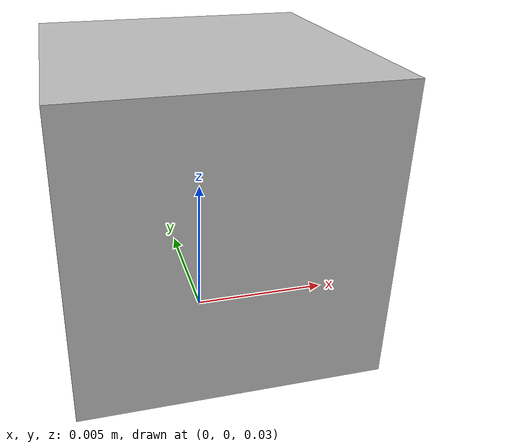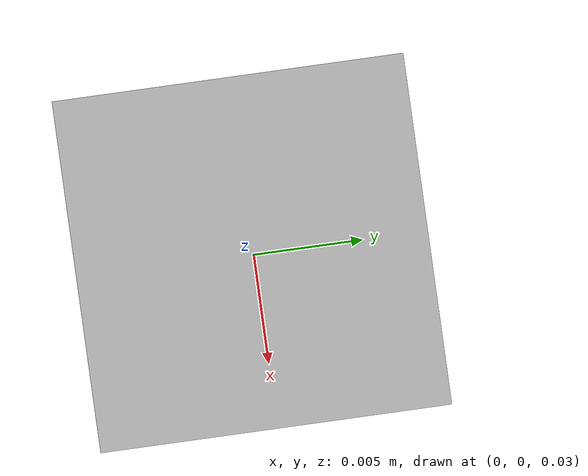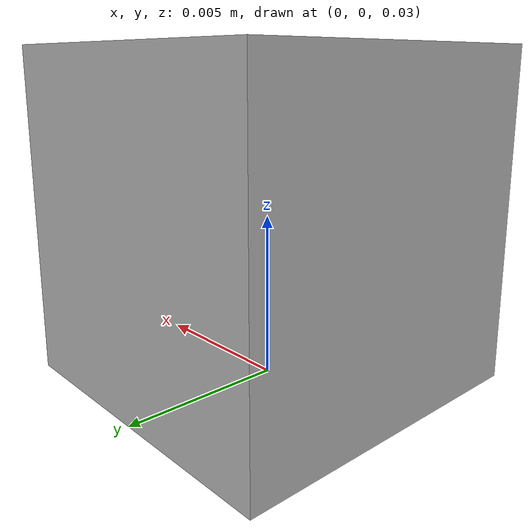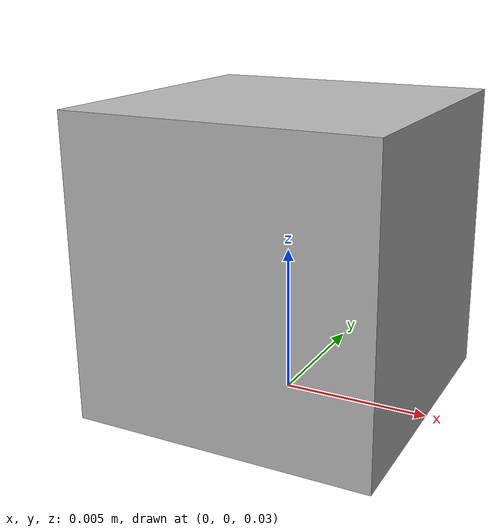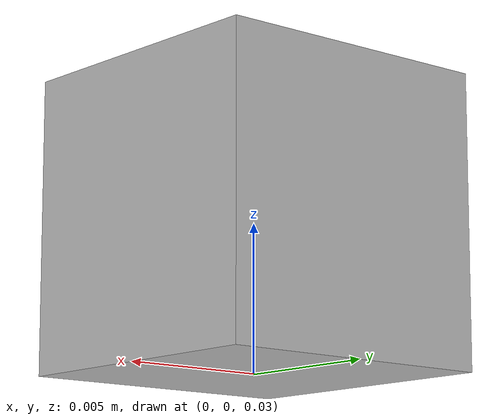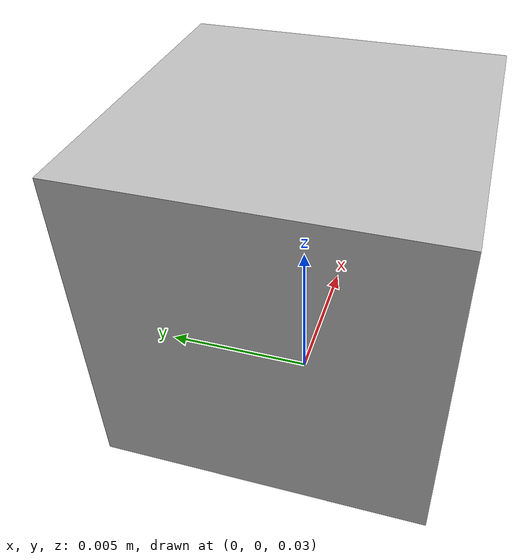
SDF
<?xml version="1.0" ?>
<sdf version="1.6">
  <model name="range_finder">
    <pose>0 0 0.035 0 0 0</pose>
    <link name="link">
      <visual name="visual">
        <pose>0 0 0 0 0 0</pose>
        <geometry>
          <box>
            <size>0.01 0.01 0.01</size>
          </box>
        </geometry>
      </visual>

      <collision name="collision">
        <pose>0 0 0 0 0 0</pose>
        <geometry>
          <box>
            <size>0.01 0.01 0.01</size>
          </box>
        </geometry>
      </collision>

      <sensor name="laser" type="ray">
        <pose>0.01 0 0.01 0 -0 0</pose>
        <ray>
          <scan>
            <horizontal>
              <samples>10</samples>
              <resolution>1</resolution>
              <min_angle>-0.0174533</min_angle>
              <max_angle>0.0174533</max_angle>
            </horizontal>
          </scan>
          <range>
            <min>0.08</min>
            <max>10</max>
            <resolution>0.01</resolution>
          </range>
        </ray>
        <plugin name="laser" filename="libRayPlugin.so" />
        <always_on>1</always_on>
        <update_rate>30</update_rate>
        <visualize>true</visualize>
      </sensor>
    </link>
  </model>
</sdf>
